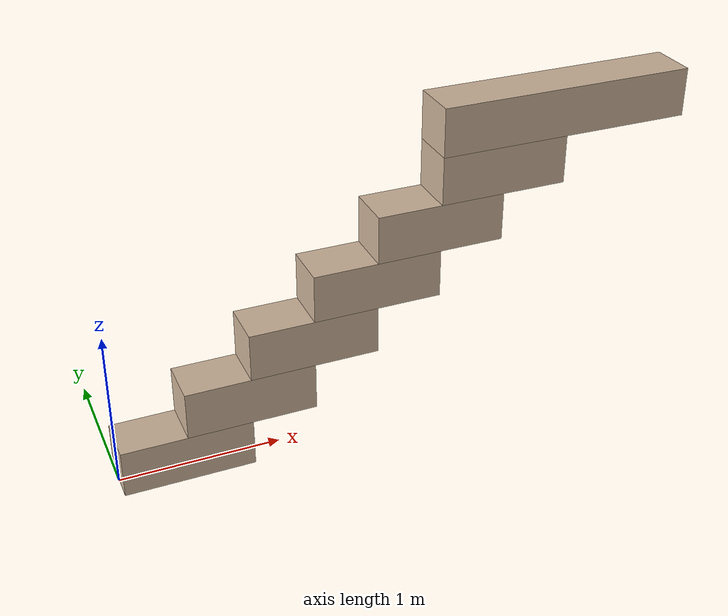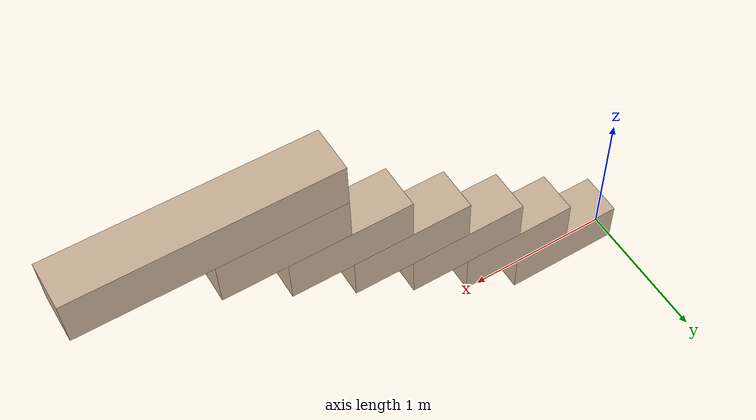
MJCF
<?xml version="1.0" ?>
<mujoco model="stairs_environment">
    <compiler angle="radian"/>

    <asset>
        <texture type="skybox" builtin="gradient" rgb1="0.3 0.5 0.7" rgb2="0 0 0"/>
        <material name="stair" rgba="0.8 0.7 0.6 1"/>
        <material name="wall" rgba="0.5 0.5 0.5 1"/>
    </asset>

    <worldbody>
        <!-- Stairs environment: 6 steps, each 0.3m high and 0.4m deep -->
        <!-- Step 1 -->
        <geom name="stair_1" type="box" pos="0.4 0 0.15" size="0.4 0.15 0.15" material="stair"/>

        <!-- Step 2 -->
        <geom name="stair_2" type="box" pos="0.8 0 0.45" size="0.4 0.15 0.15" material="stair"/>

        <!-- Step 3 -->
        <geom name="stair_3" type="box" pos="1.2 0 0.75" size="0.4 0.15 0.15" material="stair"/>

        <!-- Step 4 -->
        <geom name="stair_4" type="box" pos="1.6 0 1.05" size="0.4 0.15 0.15" material="stair"/>

        <!-- Step 5 -->
        <geom name="stair_5" type="box" pos="2.0 0 1.35" size="0.4 0.15 0.15" material="stair"/>

        <!-- Step 6 -->
        <geom name="stair_6" type="box" pos="2.4 0 1.65" size="0.4 0.15 0.15" material="stair"/>

        <!-- Platform at top -->
        <geom name="platform_top" type="box" pos="2.8 0 1.95" size="0.8 0.15 0.15" material="stair"/>
    </worldbody>
</mujoco>
